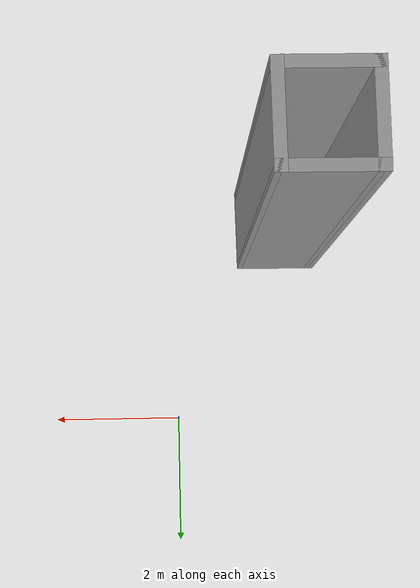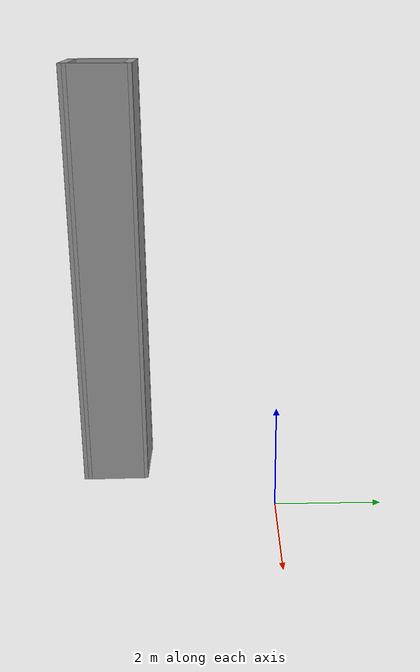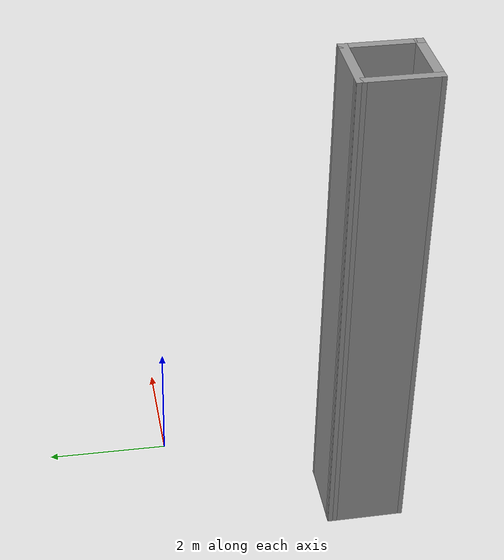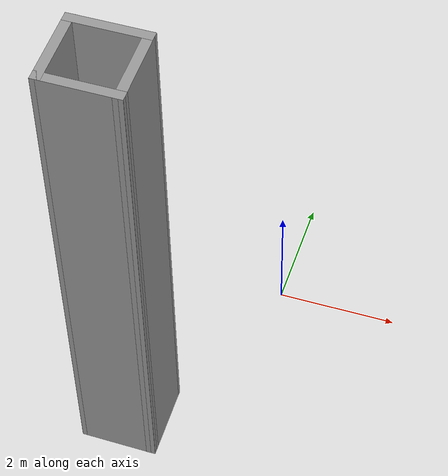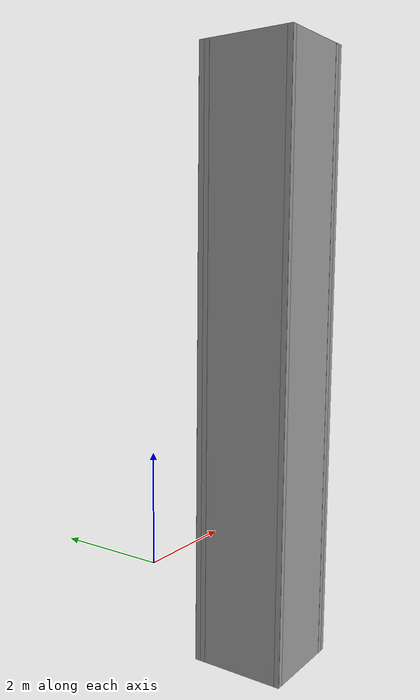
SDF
<?xml version='1.0'?>
<sdf version='1.7'>
  <model name='my_model'>
    <pose>-1.13317 -1.86323 0 0 -0 0</pose>
    <link name='Wall_0'>
      <collision name='Wall_0_Collision'>
        <geometry>
          <box>
            <size>1.25 0.15 8</size>
          </box>
        </geometry>
        <pose>0 0 4 0 -0 0</pose>
      </collision>
      <visual name='Wall_0_Visual'>
        <pose>0 0 4 0 -0 0</pose>
        <geometry>
          <box>
            <size>1.25 0.15 8</size>
          </box>
        </geometry>
        <material>
          <script>
            <uri>file://media/materials/scripts/gazebo.material</uri>
            <name>Gazebo/Grey</name>
          </script>
          <ambient>1 1 1 1</ambient>
        </material>
        <meta>
          <layer>0</layer>
        </meta>
      </visual>
      <pose>-0.50683 -0.672274 0 0 -0 -0.008182</pose>
    </link>
    <link name='Wall_1'>
      <collision name='Wall_1_Collision'>
        <geometry>
          <box>
            <size>1.2604 0.15 8</size>
          </box>
        </geometry>
        <pose>0 0 4 0 -0 0</pose>
      </collision>
      <visual name='Wall_1_Visual'>
        <pose>0 0 4 0 -0 0</pose>
        <geometry>
          <box>
            <size>1.2604 0.15 8</size>
          </box>
        </geometry>
        <material>
          <script>
            <uri>file://media/materials/scripts/gazebo.material</uri>
            <name>Gazebo/Grey</name>
          </script>
          <ambient>1 1 1 1</ambient>
        </material>
        <meta>
          <layer>0</layer>
        </meta>
      </visual>
      <pose>0.053169 -1.23177 0 0 -0 -1.55278</pose>
    </link>
    <link name='Wall_2'>
      <collision name='Wall_2_Collision'>
        <geometry>
          <box>
            <size>1.25 0.15 8</size>
          </box>
        </geometry>
        <pose>0 0 4 0 -0 0</pose>
      </collision>
      <visual name='Wall_2_Visual'>
        <pose>0 0 4 0 -0 0</pose>
        <geometry>
          <box>
            <size>1.25 0.15 8</size>
          </box>
        </geometry>
        <material>
          <script>
            <uri>file://media/materials/scripts/gazebo.material</uri>
            <name>Gazebo/Grey</name>
          </script>
          <ambient>1 1 1 1</ambient>
        </material>
        <meta>
          <layer>0</layer>
        </meta>
      </visual>
      <pose>-0.48683 -1.78227 0 0 -0 3.13341</pose>
    </link>
    <link name='Wall_3'>
      <collision name='Wall_3_Collision'>
        <geometry>
          <box>
            <size>1.26018 0.15 8</size>
          </box>
        </geometry>
        <pose>0 0 4 0 -0 0</pose>
      </collision>
      <visual name='Wall_3_Visual'>
        <pose>0 0 4 0 -0 0</pose>
        <geometry>
          <box>
            <size>1.26018 0.15 8</size>
          </box>
        </geometry>
        <material>
          <script>
            <uri>file://media/materials/scripts/gazebo.material</uri>
            <name>Gazebo/Grey</name>
          </script>
          <ambient>1 1 1 1</ambient>
        </material>
        <meta>
          <layer>0</layer>
        </meta>
      </visual>
      <pose>-1.04683 -1.22277 0 0 -0 1.58881</pose>
    </link>
    <static>1</static>
  </model>
</sdf>
